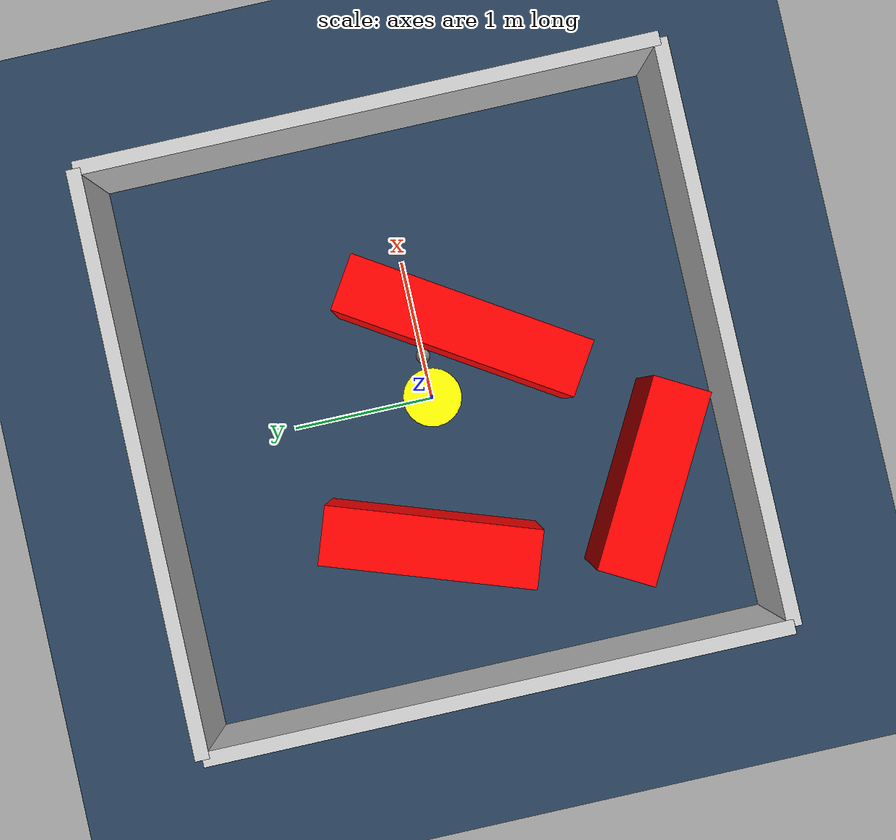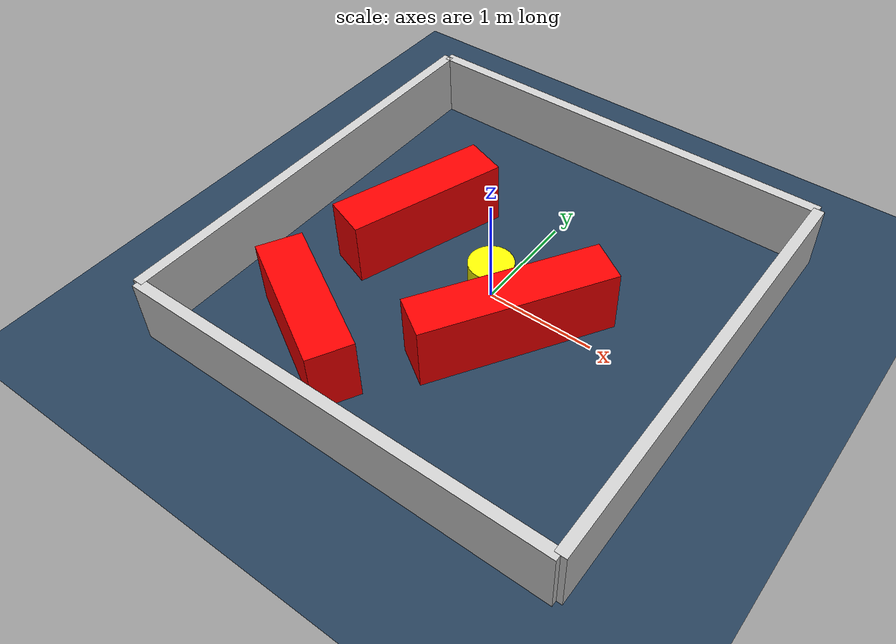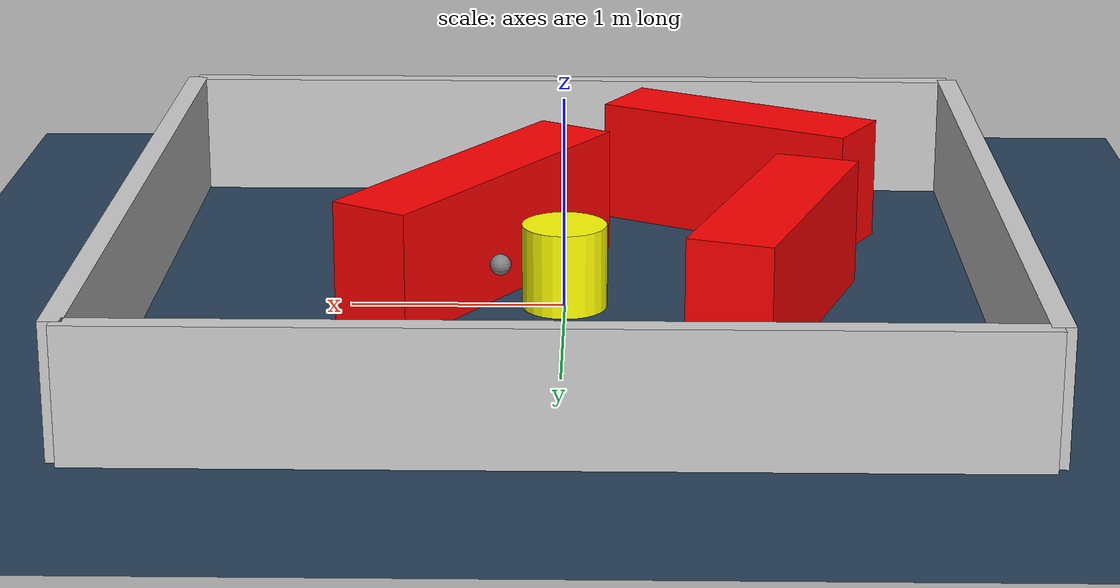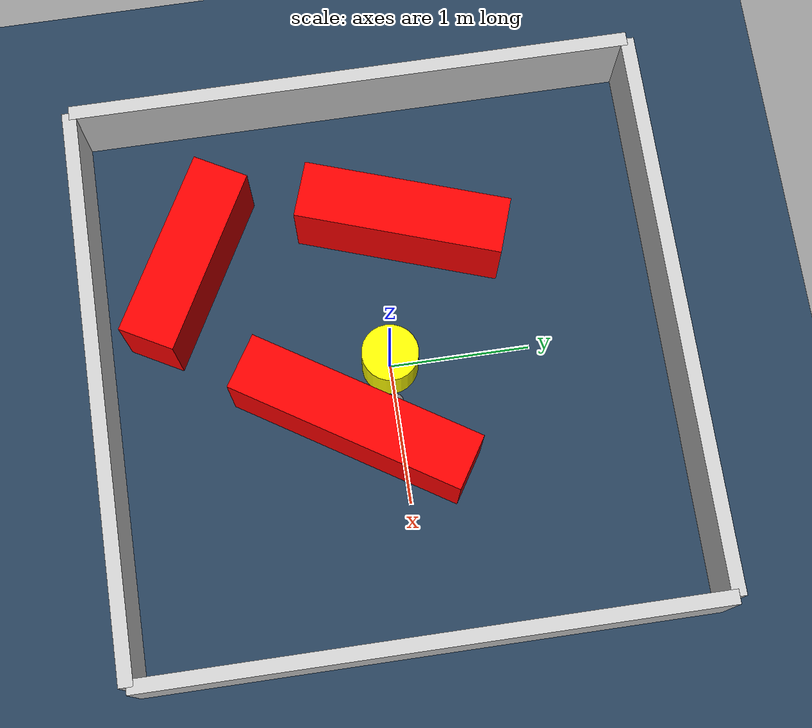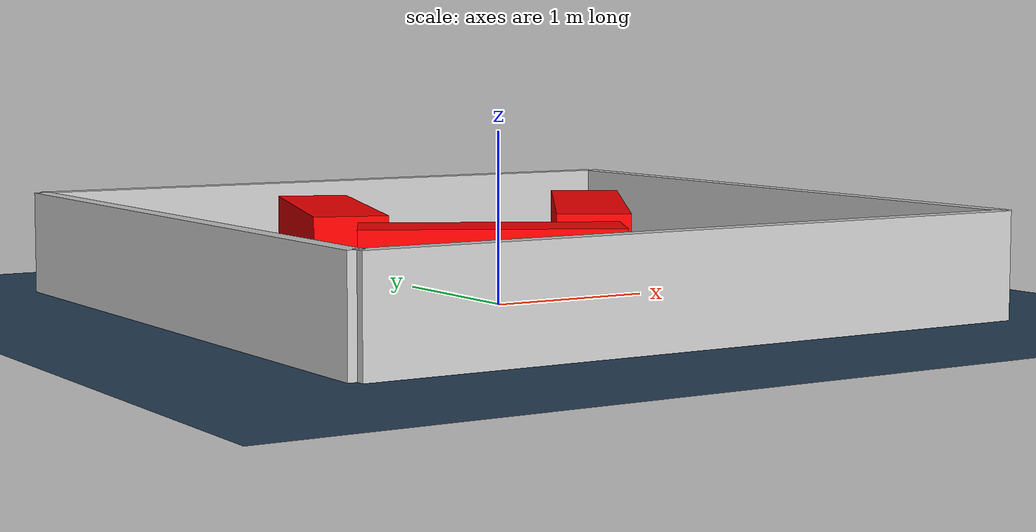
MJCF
<?xml version="1.0" ?>
<mujoco model="generated_environment">
  <option timestep="0.01" integrator="RK4" cone="elliptic"/>
  <default>
    <geom density="1"/>
  </default>
  <asset>
    <texture builtin="gradient" height="3072" rgb1="0.3 0.5 0.7" rgb2="0 0 0" type="skybox" width="512"/>
    <texture builtin="checker" height="300" mark="edge" markrgb="0.8 0.8 0.8" name="groundplane" rgb1="0.2 0.3 0.4" rgb2="0.1 0.2 0.3" type="2d" width="300"/>
    <material name="groundplane" reflectance="0.2" texrepeat="5 5" texture="groundplane" texuniform="true"/>
    <material name="robot" rgba="0.0 1.0 0.0 1"/>
  </asset>
  <worldbody>
    <light dir="0 0 -1" directional="true" pos="0 0 1.5"/>
    <geom condim="4" friction="1.0 0.005 0.001" material="groundplane" name="floor" size="0 0 0.05" type="plane"/>
    <body name="walls">
      <geom name="wall_1" condim="4" pos="-2.0 0.0 0.3" rgba="0.800000011920929 0.800000011920929 0.800000011920929 1.0" size="0.05 2.0 0.3" type="box"/>
      <geom name="wall_2" condim="4" pos="2.0 0.0 0.3" rgba="0.800000011920929 0.800000011920929 0.800000011920929 1.0" size="0.05 2.0 0.3" type="box"/>
      <geom name="wall_3" condim="4" pos="0.0 -2.0 0.3" rgba="0.800000011920929 0.800000011920929 0.800000011920929 1.0" size="2.0 0.05 0.3" type="box"/>
      <geom name="wall_4" condim="4" pos="0.0 2.0 0.3" rgba="0.800000011920929 0.800000011920929 0.800000011920929 1.0" size="2.0 0.05 0.3" type="box"/>
    </body>
    <body name="robot">
      <joint name="joint_x" type="slide" pos="0 0 0" axis="1 0 0"/>
      <joint name="joint_y" type="slide" pos="0 0 0" axis="0 1 0"/>
      <geom name="robot" type="sphere" pos="0.3 0.0 0.2" size="0.05" mass="5." friction="1.0 0.005 0.0001" condim="4" rgba="0.5 0.5 0.5 1.0"/>
      <site name="sensor_ball"/>
    </body>
    <body name="obstacle_movable_1">
      <geom name="obstacle_movable_1" condim="4" pos="0.0 0.0 0.2" euler="0 0 0.0" friction="1.0 0.005 0.001" rgba="1.0 1.0 0.0 1.0" size="0.2 0.2 0.0" type="cylinder" mass="0.1"/>
      <joint type="free"/>
    </body>
    <body name="obstacle_2_static">
      <geom name="obstacle_2_static" condim="4" pos="-0.968399420650442 0.22798605417453488 0.3" euler="0 0 250.97694315644253" friction="1.0 0.005 0.001" rgba="1 0 0 1" size="0.7296579452870173 0.2 0.3" type="box"/>
    </body>
    <body name="obstacle_3_static">
      <geom name="obstacle_3_static" condim="4" pos="-0.864583132217552 -1.3104843349742548 0.3" euler="0 0 151.027237286978" friction="1.0 0.005 0.001" rgba="1 0 0 1" size="0.6702104048117004 0.2 0.3" type="box"/>
    </body>
    <body name="obstacle_4_static">
      <geom name="obstacle_4_static" condim="4" pos="0.4205254950063666 -0.2977023065893889 0.3" euler="0 0 237.61775983052297" friction="1.0 0.005 0.001" rgba="1 0 0 1" size="0.8562586293801022 0.2 0.3" type="box"/>
    </body>
  </worldbody>
  <actuator>
    <motor name="actuator_x" joint="joint_x" gear="1" ctrlrange="-1 1"/>
    <motor name="actuator_y" joint="joint_y" gear="1" ctrlrange="-1 1"/>
  </actuator>
</mujoco>
